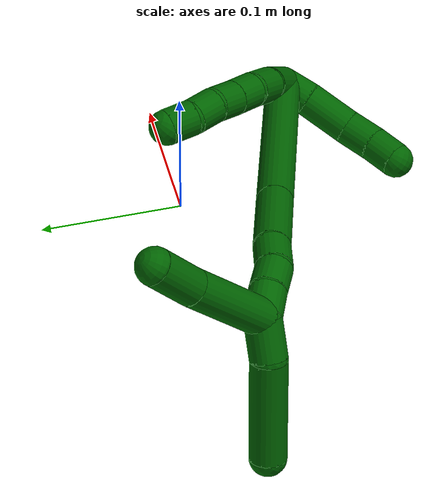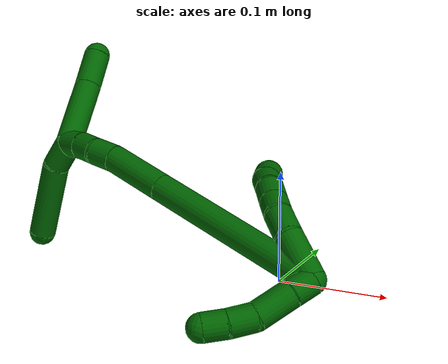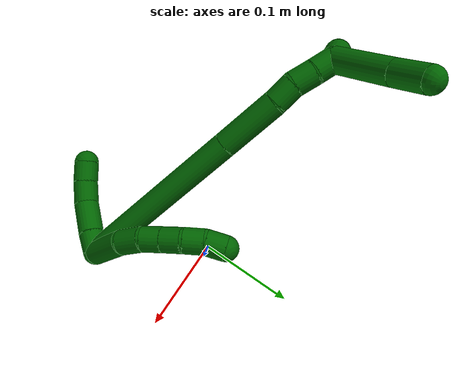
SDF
<sdf version="1.7">
 <world name="default">
  <model name="6">
   <static>0</static>
   <link name="6">
    <collision name="collision-cylinder-e_1_2_8">
     <pose>-0.014879 -0.001527 0.015789 0.096419 -0.75343 -0.038169</pose>
     <geometry><cylinder><radius>0.0125</radius><length>0.043497</length></cylinder></geometry>
     <surface>
      <friction><ode><mu>1.16</mu><mu2>1.16</mu2><slip1>0</slip1><slip2>0</slip2></ode></friction>
      <contact><ode><kp>1e+06</kp><kd>1</kd><max_vel>0</max_vel><min_depth>0.001</min_depth></ode></contact>
     </surface>
    </collision>
    <visual name="visual-cylinder-e_1_2_8">
     <pose>-0.014879 -0.001527 0.015789 0.096419 -0.75343 -0.038169</pose>
     <geometry><cylinder><radius>0.0125</radius><length>0.043497</length></cylinder></geometry>
     <material><ambient>0 0.392157 0.003922 1</ambient></material>
    </visual>
    <collision name="collision-cylinder-e_2_8_9">
     <pose>-0.037936 -0.000794 0.041219 -0.230214 -0.69029 0.08309</pose>
     <geometry><cylinder><radius>0.0125</radius><length>0.025686</length></cylinder></geometry>
     <surface>
      <friction><ode><mu>1.16</mu><mu2>1.16</mu2><slip1>0</slip1><slip2>0</slip2></ode></friction>
      <contact><ode><kp>1e+06</kp><kd>1</kd><max_vel>0</max_vel><min_depth>0.001</min_depth></ode></contact>
     </surface>
    </collision>
    <visual name="visual-cylinder-e_2_8_9">
     <pose>-0.037936 -0.000794 0.041219 -0.230214 -0.69029 0.08309</pose>
     <geometry><cylinder><radius>0.0125</radius><length>0.025686</length></cylinder></geometry>
     <material><ambient>0 0.392157 0.003922 1</ambient></material>
    </visual>
    <collision name="collision-cylinder-e_3_9_10">
     <pose>-0.051374 0.005878 0.058267 -0.537364 -0.547801 0.154412</pose>
     <geometry><cylinder><radius>0.0125</radius><length>0.020199</length></cylinder></geometry>
     <surface>
      <friction><ode><mu>1.16</mu><mu2>1.16</mu2><slip1>0</slip1><slip2>0</slip2></ode></friction>
      <contact><ode><kp>1e+06</kp><kd>1</kd><max_vel>0</max_vel><min_depth>0.001</min_depth></ode></contact>
     </surface>
    </collision>
    <visual name="visual-cylinder-e_3_9_10">
     <pose>-0.051374 0.005878 0.058267 -0.537364 -0.547801 0.154412</pose>
     <geometry><cylinder><radius>0.0125</radius><length>0.020199</length></cylinder></geometry>
     <material><ambient>0 0.392157 0.003922 1</ambient></material>
    </visual>
    <collision name="collision-cylinder-e_4_10_11">
     <pose>-0.06194 0.014342 0.073484 -0.478389 -0.542652 0.135471</pose>
     <geometry><cylinder><radius>0.0125</radius><length>0.020549</length></cylinder></geometry>
     <surface>
      <friction><ode><mu>1.16</mu><mu2>1.16</mu2><slip1>0</slip1><slip2>0</slip2></ode></friction>
      <contact><ode><kp>1e+06</kp><kd>1</kd><max_vel>0</max_vel><min_depth>0.001</min_depth></ode></contact>
     </surface>
    </collision>
    <visual name="visual-cylinder-e_4_10_11">
     <pose>-0.06194 0.014342 0.073484 -0.478389 -0.542652 0.135471</pose>
     <geometry><cylinder><radius>0.0125</radius><length>0.020549</length></cylinder></geometry>
     <material><ambient>0 0.392157 0.003922 1</ambient></material>
    </visual>
    <collision name="collision-cylinder-e_5_11_12">
     <pose>-0.071968 0.024363 0.08782 -0.741045 -0.490391 0.193802</pose>
     <geometry><cylinder><radius>0.0125</radius><length>0.020052</length></cylinder></geometry>
     <surface>
      <friction><ode><mu>1.16</mu><mu2>1.16</mu2><slip1>0</slip1><slip2>0</slip2></ode></friction>
      <contact><ode><kp>1e+06</kp><kd>1</kd><max_vel>0</max_vel><min_depth>0.001</min_depth></ode></contact>
     </surface>
    </collision>
    <visual name="visual-cylinder-e_5_11_12">
     <pose>-0.071968 0.024363 0.08782 -0.741045 -0.490391 0.193802</pose>
     <geometry><cylinder><radius>0.0125</radius><length>0.020052</length></cylinder></geometry>
     <material><ambient>0 0.392157 0.003922 1</ambient></material>
    </visual>
    <collision name="collision-cylinder-e_6_12_6">
     <pose>-0.079135 0.037313 0.101089 -0.802547 -0.246797 0.105152</pose>
     <geometry><cylinder><radius>0.0125</radius><length>0.020017</length></cylinder></geometry>
     <surface>
      <friction><ode><mu>1.16</mu><mu2>1.16</mu2><slip1>0</slip1><slip2>0</slip2></ode></friction>
      <contact><ode><kp>1e+06</kp><kd>1</kd><max_vel>0</max_vel><min_depth>0.001</min_depth></ode></contact>
     </surface>
    </collision>
    <visual name="visual-cylinder-e_6_12_6">
     <pose>-0.079135 0.037313 0.101089 -0.802547 -0.246797 0.105152</pose>
     <geometry><cylinder><radius>0.0125</radius><length>0.020017</length></cylinder></geometry>
     <material><ambient>0 0.392157 0.003922 1</ambient></material>
    </visual>
    <collision name="collision-cylinder-e_1_2_13">
     <pose>-0.005596 -0.002067 -0.008596 2.90557 -0.564299 -2.36511</pose>
     <geometry><cylinder><radius>0.0125</radius><length>0.020925</length></cylinder></geometry>
     <surface>
      <friction><ode><mu>1.16</mu><mu2>1.16</mu2><slip1>0</slip1><slip2>0</slip2></ode></friction>
      <contact><ode><kp>1e+06</kp><kd>1</kd><max_vel>0</max_vel><min_depth>0.001</min_depth></ode></contact>
     </surface>
    </collision>
    <visual name="visual-cylinder-e_1_2_13">
     <pose>-0.005596 -0.002067 -0.008596 2.90557 -0.564299 -2.36511</pose>
     <geometry><cylinder><radius>0.0125</radius><length>0.020925</length></cylinder></geometry>
     <material><ambient>0 0.392157 0.003922 1</ambient></material>
    </visual>
    <collision name="collision-cylinder-e_2_13_14">
     <pose>-0.020925 -0.006288 -0.031383 2.991 -0.595879 -2.6598</pose>
     <geometry><cylinder><radius>0.0125</radius><length>0.034686</length></cylinder></geometry>
     <surface>
      <friction><ode><mu>1.16</mu><mu2>1.16</mu2><slip1>0</slip1><slip2>0</slip2></ode></friction>
      <contact><ode><kp>1e+06</kp><kd>1</kd><max_vel>0</max_vel><min_depth>0.001</min_depth></ode></contact>
     </surface>
    </collision>
    <visual name="visual-cylinder-e_2_13_14">
     <pose>-0.020925 -0.006288 -0.031383 2.991 -0.595879 -2.6598</pose>
     <geometry><cylinder><radius>0.0125</radius><length>0.034686</length></cylinder></geometry>
     <material><ambient>0 0.392157 0.003922 1</ambient></material>
    </visual>
    <collision name="collision-cylinder-e_3_14_15">
     <pose>-0.039701 -0.011228 -0.052442 2.75622 -0.884183 -2.35964</pose>
     <geometry><cylinder><radius>0.0125</radius><length>0.023384</length></cylinder></geometry>
     <surface>
      <friction><ode><mu>1.16</mu><mu2>1.16</mu2><slip1>0</slip1><slip2>0</slip2></ode></friction>
      <contact><ode><kp>1e+06</kp><kd>1</kd><max_vel>0</max_vel><min_depth>0.001</min_depth></ode></contact>
     </surface>
    </collision>
    <visual name="visual-cylinder-e_3_14_15">
     <pose>-0.039701 -0.011228 -0.052442 2.75622 -0.884183 -2.35964</pose>
     <geometry><cylinder><radius>0.0125</radius><length>0.023384</length></cylinder></geometry>
     <material><ambient>0 0.392157 0.003922 1</ambient></material>
    </visual>
    <collision name="collision-cylinder-e_4_15_5">
     <pose>-0.057607 -0.016174 -0.064514 2.74804 -1.00457 -2.44527</pose>
     <geometry><cylinder><radius>0.0125</radius><length>0.021005</length></cylinder></geometry>
     <surface>
      <friction><ode><mu>1.16</mu><mu2>1.16</mu2><slip1>0</slip1><slip2>0</slip2></ode></friction>
      <contact><ode><kp>1e+06</kp><kd>1</kd><max_vel>0</max_vel><min_depth>0.001</min_depth></ode></contact>
     </surface>
    </collision>
    <visual name="visual-cylinder-e_4_15_5">
     <pose>-0.057607 -0.016174 -0.064514 2.74804 -1.00457 -2.44527</pose>
     <geometry><cylinder><radius>0.0125</radius><length>0.021005</length></cylinder></geometry>
     <material><ambient>0 0.392157 0.003922 1</ambient></material>
    </visual>
    <collision name="collision-cylinder-e_1_2_16">
     <pose>-0.080701 0.010446 0.029851 -0.336618 -1.1973 0.230788</pose>
     <geometry><cylinder><radius>0.0125</radius><length>0.173354</length></cylinder></geometry>
     <surface>
      <friction><ode><mu>1.16</mu><mu2>1.16</mu2><slip1>0</slip1><slip2>0</slip2></ode></friction>
      <contact><ode><kp>1e+06</kp><kd>1</kd><max_vel>0</max_vel><min_depth>0.001</min_depth></ode></contact>
     </surface>
    </collision>
    <visual name="visual-cylinder-e_1_2_16">
     <pose>-0.080701 0.010446 0.029851 -0.336618 -1.1973 0.230788</pose>
     <geometry><cylinder><radius>0.0125</radius><length>0.173354</length></cylinder></geometry>
     <material><ambient>0 0.392157 0.003922 1</ambient></material>
    </visual>
    <collision name="collision-cylinder-e_2_16_17">
     <pose>-0.189583 0.024336 0.070161 -0.31814 -1.19832 0.218239</pose>
     <geometry><cylinder><radius>0.0125</radius><length>0.06051</length></cylinder></geometry>
     <surface>
      <friction><ode><mu>1.16</mu><mu2>1.16</mu2><slip1>0</slip1><slip2>0</slip2></ode></friction>
      <contact><ode><kp>1e+06</kp><kd>1</kd><max_vel>0</max_vel><min_depth>0.001</min_depth></ode></contact>
     </surface>
    </collision>
    <visual name="visual-cylinder-e_2_16_17">
     <pose>-0.189583 0.024336 0.070161 -0.31814 -1.19832 0.218239</pose>
     <geometry><cylinder><radius>0.0125</radius><length>0.06051</length></cylinder></geometry>
     <material><ambient>0 0.392157 0.003922 1</ambient></material>
    </visual>
    <collision name="collision-cylinder-e_3_17_18">
     <pose>-0.228882 0.029419 0.082953 -0.612153 -1.31972 0.48088</pose>
     <geometry><cylinder><radius>0.0125</radius><length>0.022957</length></cylinder></geometry>
     <surface>
      <friction><ode><mu>1.16</mu><mu2>1.16</mu2><slip1>0</slip1><slip2>0</slip2></ode></friction>
      <contact><ode><kp>1e+06</kp><kd>1</kd><max_vel>0</max_vel><min_depth>0.001</min_depth></ode></contact>
     </surface>
    </collision>
    <visual name="visual-cylinder-e_3_17_18">
     <pose>-0.228882 0.029419 0.082953 -0.612153 -1.31972 0.48088</pose>
     <geometry><cylinder><radius>0.0125</radius><length>0.022957</length></cylinder></geometry>
     <material><ambient>0 0.392157 0.003922 1</ambient></material>
    </visual>
    <collision name="collision-cylinder-e_4_18_19">
     <pose>-0.249555 0.035021 0.088592 -0.875705 -1.07555 0.54456</pose>
     <geometry><cylinder><radius>0.0125</radius><length>0.021717</length></cylinder></geometry>
     <surface>
      <friction><ode><mu>1.16</mu><mu2>1.16</mu2><slip1>0</slip1><slip2>0</slip2></ode></friction>
      <contact><ode><kp>1e+06</kp><kd>1</kd><max_vel>0</max_vel><min_depth>0.001</min_depth></ode></contact>
     </surface>
    </collision>
    <visual name="visual-cylinder-e_4_18_19">
     <pose>-0.249555 0.035021 0.088592 -0.875705 -1.07555 0.54456</pose>
     <geometry><cylinder><radius>0.0125</radius><length>0.021717</length></cylinder></geometry>
     <material><ambient>0 0.392157 0.003922 1</ambient></material>
    </visual>
    <collision name="collision-cylinder-e_5_19_1">
     <pose>-0.268569 0.043639 0.093894 -1.16561 -1.0793 0.752069</pose>
     <geometry><cylinder><radius>0.0125</radius><length>0.021461</length></cylinder></geometry>
     <surface>
      <friction><ode><mu>1.16</mu><mu2>1.16</mu2><slip1>0</slip1><slip2>0</slip2></ode></friction>
      <contact><ode><kp>1e+06</kp><kd>1</kd><max_vel>0</max_vel><min_depth>0.001</min_depth></ode></contact>
     </surface>
    </collision>
    <visual name="visual-cylinder-e_5_19_1">
     <pose>-0.268569 0.043639 0.093894 -1.16561 -1.0793 0.752069</pose>
     <geometry><cylinder><radius>0.0125</radius><length>0.021461</length></cylinder></geometry>
     <material><ambient>0 0.392157 0.003922 1</ambient></material>
    </visual>
    <collision name="collision-cylinder-e_1_1_20">
     <pose>-0.283987 0.057125 0.087275 -2.34376 -0.44984 0.99457</pose>
     <geometry><cylinder><radius>0.0125</radius><length>0.027401</length></cylinder></geometry>
     <surface>
      <friction><ode><mu>1.16</mu><mu2>1.16</mu2><slip1>0</slip1><slip2>0</slip2></ode></friction>
      <contact><ode><kp>1e+06</kp><kd>1</kd><max_vel>0</max_vel><min_depth>0.001</min_depth></ode></contact>
     </surface>
    </collision>
    <visual name="visual-cylinder-e_1_1_20">
     <pose>-0.283987 0.057125 0.087275 -2.34376 -0.44984 0.99457</pose>
     <geometry><cylinder><radius>0.0125</radius><length>0.027401</length></cylinder></geometry>
     <material><ambient>0 0.392157 0.003922 1</ambient></material>
    </visual>
    <collision name="collision-cylinder-e_2_20_4">
     <pose>-0.296035 0.093302 0.055579 -2.27183 -0.1686 0.359863</pose>
     <geometry><cylinder><radius>0.0125</radius><length>0.072599</length></cylinder></geometry>
     <surface>
      <friction><ode><mu>1.16</mu><mu2>1.16</mu2><slip1>0</slip1><slip2>0</slip2></ode></friction>
      <contact><ode><kp>1e+06</kp><kd>1</kd><max_vel>0</max_vel><min_depth>0.001</min_depth></ode></contact>
     </surface>
    </collision>
    <visual name="visual-cylinder-e_2_20_4">
     <pose>-0.296035 0.093302 0.055579 -2.27183 -0.1686 0.359863</pose>
     <geometry><cylinder><radius>0.0125</radius><length>0.072599</length></cylinder></geometry>
     <material><ambient>0 0.392157 0.003922 1</ambient></material>
    </visual>
    <collision name="collision-cylinder-e_1_1_21">
     <pose>-0.282281 0.049039 0.128073 -0.023172 -0.131313 0.001524</pose>
     <geometry><cylinder><radius>0.0125</radius><length>0.064943</length></cylinder></geometry>
     <surface>
      <friction><ode><mu>1.16</mu><mu2>1.16</mu2><slip1>0</slip1><slip2>0</slip2></ode></friction>
      <contact><ode><kp>1e+06</kp><kd>1</kd><max_vel>0</max_vel><min_depth>0.001</min_depth></ode></contact>
     </surface>
    </collision>
    <visual name="visual-cylinder-e_1_1_21">
     <pose>-0.282281 0.049039 0.128073 -0.023172 -0.131313 0.001524</pose>
     <geometry><cylinder><radius>0.0125</radius><length>0.064943</length></cylinder></geometry>
     <material><ambient>0 0.392157 0.003922 1</ambient></material>
    </visual>
    <collision name="collision-cylinder-e_2_21_3">
     <pose>-0.288692 0.048908 0.177629 0.05042 -0.123504 -0.003118</pose>
     <geometry><cylinder><radius>0.0125</radius><length>0.035057</length></cylinder></geometry>
     <surface>
      <friction><ode><mu>1.16</mu><mu2>1.16</mu2><slip1>0</slip1><slip2>0</slip2></ode></friction>
      <contact><ode><kp>1e+06</kp><kd>1</kd><max_vel>0</max_vel><min_depth>0.001</min_depth></ode></contact>
     </surface>
    </collision>
    <visual name="visual-cylinder-e_2_21_3">
     <pose>-0.288692 0.048908 0.177629 0.05042 -0.123504 -0.003118</pose>
     <geometry><cylinder><radius>0.0125</radius><length>0.035057</length></cylinder></geometry>
     <material><ambient>0 0.392157 0.003922 1</ambient></material>
    </visual>
    <collision name="collision-sphere-3">
     <pose>-0.290851 0.048031 0.195002 0 -0 0</pose>
     <geometry><sphere><radius>0.0125</radius></sphere></geometry>
     <surface>
      <friction><ode><mu>1.16</mu><mu2>1.16</mu2><slip1>0</slip1><slip2>0</slip2></ode></friction>
      <contact><ode><kp>1e+06</kp><kd>1</kd><max_vel>0</max_vel><min_depth>0.001</min_depth></ode></contact>
     </surface>
    </collision>
    <visual name="visual-sphere-3">
     <pose>-0.290851 0.048031 0.195002 0 -0 0</pose>
     <geometry><sphere><radius>0.0125</radius></sphere></geometry>
     <material><ambient>0 0.392157 0.003922 1</ambient></material>
    </visual>
    <collision name="collision-sphere-21">
     <pose>-0.286533 0.049785 0.160257 0 -0 0</pose>
     <geometry><sphere><radius>0.0125</radius></sphere></geometry>
     <surface>
      <friction><ode><mu>1.16</mu><mu2>1.16</mu2><slip1>0</slip1><slip2>0</slip2></ode></friction>
      <contact><ode><kp>1e+06</kp><kd>1</kd><max_vel>0</max_vel><min_depth>0.001</min_depth></ode></contact>
     </surface>
    </collision>
    <visual name="visual-sphere-21">
     <pose>-0.286533 0.049785 0.160257 0 -0 0</pose>
     <geometry><sphere><radius>0.0125</radius></sphere></geometry>
     <material><ambient>0 0.392157 0.003922 1</ambient></material>
    </visual>
    <collision name="collision-sphere-4">
     <pose>-0.302126 0.120648 0.032497 0 -0 0</pose>
     <geometry><sphere><radius>0.0125</radius></sphere></geometry>
     <surface>
      <friction><ode><mu>1.16</mu><mu2>1.16</mu2><slip1>0</slip1><slip2>0</slip2></ode></friction>
      <contact><ode><kp>1e+06</kp><kd>1</kd><max_vel>0</max_vel><min_depth>0.001</min_depth></ode></contact>
     </surface>
    </collision>
    <visual name="visual-sphere-4">
     <pose>-0.302126 0.120648 0.032497 0 -0 0</pose>
     <geometry><sphere><radius>0.0125</radius></sphere></geometry>
     <material><ambient>0 0.392157 0.003922 1</ambient></material>
    </visual>
    <collision name="collision-sphere-20">
     <pose>-0.289944 0.065957 0.07866 0 -0 0</pose>
     <geometry><sphere><radius>0.0125</radius></sphere></geometry>
     <surface>
      <friction><ode><mu>1.16</mu><mu2>1.16</mu2><slip1>0</slip1><slip2>0</slip2></ode></friction>
      <contact><ode><kp>1e+06</kp><kd>1</kd><max_vel>0</max_vel><min_depth>0.001</min_depth></ode></contact>
     </surface>
    </collision>
    <visual name="visual-sphere-20">
     <pose>-0.289944 0.065957 0.07866 0 -0 0</pose>
     <geometry><sphere><radius>0.0125</radius></sphere></geometry>
     <material><ambient>0 0.392157 0.003922 1</ambient></material>
    </visual>
    <collision name="collision-sphere-12">
     <pose>-0.07669 0.030334 0.094345 0 -0 0</pose>
     <geometry><sphere><radius>0.0125</radius></sphere></geometry>
     <surface>
      <friction><ode><mu>1.16</mu><mu2>1.16</mu2><slip1>0</slip1><slip2>0</slip2></ode></friction>
      <contact><ode><kp>1e+06</kp><kd>1</kd><max_vel>0</max_vel><min_depth>0.001</min_depth></ode></contact>
     </surface>
    </collision>
    <visual name="visual-sphere-12">
     <pose>-0.07669 0.030334 0.094345 0 -0 0</pose>
     <geometry><sphere><radius>0.0125</radius></sphere></geometry>
     <material><ambient>0 0.392157 0.003922 1</ambient></material>
    </visual>
    <collision name="collision-sphere-11">
     <pose>-0.067246 0.018392 0.081294 0 -0 0</pose>
     <geometry><sphere><radius>0.0125</radius></sphere></geometry>
     <surface>
      <friction><ode><mu>1.16</mu><mu2>1.16</mu2><slip1>0</slip1><slip2>0</slip2></ode></friction>
      <contact><ode><kp>1e+06</kp><kd>1</kd><max_vel>0</max_vel><min_depth>0.001</min_depth></ode></contact>
     </surface>
    </collision>
    <visual name="visual-sphere-11">
     <pose>-0.067246 0.018392 0.081294 0 -0 0</pose>
     <geometry><sphere><radius>0.0125</radius></sphere></geometry>
     <material><ambient>0 0.392157 0.003922 1</ambient></material>
    </visual>
    <collision name="collision-sphere-10">
     <pose>-0.056634 0.010292 0.065673 0 -0 0</pose>
     <geometry><sphere><radius>0.0125</radius></sphere></geometry>
     <surface>
      <friction><ode><mu>1.16</mu><mu2>1.16</mu2><slip1>0</slip1><slip2>0</slip2></ode></friction>
      <contact><ode><kp>1e+06</kp><kd>1</kd><max_vel>0</max_vel><min_depth>0.001</min_depth></ode></contact>
     </surface>
    </collision>
    <visual name="visual-sphere-10">
     <pose>-0.056634 0.010292 0.065673 0 -0 0</pose>
     <geometry><sphere><radius>0.0125</radius></sphere></geometry>
     <material><ambient>0 0.392157 0.003922 1</ambient></material>
    </visual>
    <collision name="collision-sphere-9">
     <pose>-0.046114 0.001465 0.05086 0 -0 0</pose>
     <geometry><sphere><radius>0.0125</radius></sphere></geometry>
     <surface>
      <friction><ode><mu>1.16</mu><mu2>1.16</mu2><slip1>0</slip1><slip2>0</slip2></ode></friction>
      <contact><ode><kp>1e+06</kp><kd>1</kd><max_vel>0</max_vel><min_depth>0.001</min_depth></ode></contact>
     </surface>
    </collision>
    <visual name="visual-sphere-9">
     <pose>-0.046114 0.001465 0.05086 0 -0 0</pose>
     <geometry><sphere><radius>0.0125</radius></sphere></geometry>
     <material><ambient>0 0.392157 0.003922 1</ambient></material>
    </visual>
    <collision name="collision-sphere-2">
     <geometry><sphere><radius>0.0125</radius></sphere></geometry>
     <surface>
      <friction><ode><mu>1.16</mu><mu2>1.16</mu2><slip1>0</slip1><slip2>0</slip2></ode></friction>
      <contact><ode><kp>1e+06</kp><kd>1</kd><max_vel>0</max_vel><min_depth>0.001</min_depth></ode></contact>
     </surface>
    </collision>
    <visual name="visual-sphere-2">
     <geometry><sphere><radius>0.0125</radius></sphere></geometry>
     <material><ambient>0 0.392157 0.003922 1</ambient></material>
    </visual>
    <collision name="collision-sphere-19">
     <pose>-0.259109 0.038985 0.091897 0 -0 0</pose>
     <geometry><sphere><radius>0.0125</radius></sphere></geometry>
     <surface>
      <friction><ode><mu>1.16</mu><mu2>1.16</mu2><slip1>0</slip1><slip2>0</slip2></ode></friction>
      <contact><ode><kp>1e+06</kp><kd>1</kd><max_vel>0</max_vel><min_depth>0.001</min_depth></ode></contact>
     </surface>
    </collision>
    <visual name="visual-sphere-19">
     <pose>-0.259109 0.038985 0.091897 0 -0 0</pose>
     <geometry><sphere><radius>0.0125</radius></sphere></geometry>
     <material><ambient>0 0.392157 0.003922 1</ambient></material>
    </visual>
    <collision name="collision-sphere-8">
     <pose>-0.029758 -0.003054 0.031577 0 -0 0</pose>
     <geometry><sphere><radius>0.0125</radius></sphere></geometry>
     <surface>
      <friction><ode><mu>1.16</mu><mu2>1.16</mu2><slip1>0</slip1><slip2>0</slip2></ode></friction>
      <contact><ode><kp>1e+06</kp><kd>1</kd><max_vel>0</max_vel><min_depth>0.001</min_depth></ode></contact>
     </surface>
    </collision>
    <visual name="visual-sphere-8">
     <pose>-0.029758 -0.003054 0.031577 0 -0 0</pose>
     <geometry><sphere><radius>0.0125</radius></sphere></geometry>
     <material><ambient>0 0.392157 0.003922 1</ambient></material>
    </visual>
    <collision name="collision-sphere-6">
     <pose>-0.08158 0.044292 0.107833 0 -0 0</pose>
     <geometry><sphere><radius>0.0125</radius></sphere></geometry>
     <surface>
      <friction><ode><mu>1.16</mu><mu2>1.16</mu2><slip1>0</slip1><slip2>0</slip2></ode></friction>
      <contact><ode><kp>1e+06</kp><kd>1</kd><max_vel>0</max_vel><min_depth>0.001</min_depth></ode></contact>
     </surface>
    </collision>
    <visual name="visual-sphere-6">
     <pose>-0.08158 0.044292 0.107833 0 -0 0</pose>
     <geometry><sphere><radius>0.0125</radius></sphere></geometry>
     <material><ambient>0 0.392157 0.003922 1</ambient></material>
    </visual>
    <collision name="collision-sphere-13">
     <pose>-0.011191 -0.004135 -0.017191 0 -0 0</pose>
     <geometry><sphere><radius>0.0125</radius></sphere></geometry>
     <surface>
      <friction><ode><mu>1.16</mu><mu2>1.16</mu2><slip1>0</slip1><slip2>0</slip2></ode></friction>
      <contact><ode><kp>1e+06</kp><kd>1</kd><max_vel>0</max_vel><min_depth>0.001</min_depth></ode></contact>
     </surface>
    </collision>
    <visual name="visual-sphere-13">
     <pose>-0.011191 -0.004135 -0.017191 0 -0 0</pose>
     <geometry><sphere><radius>0.0125</radius></sphere></geometry>
     <material><ambient>0 0.392157 0.003922 1</ambient></material>
    </visual>
    <collision name="collision-sphere-14">
     <pose>-0.030658 -0.008441 -0.045574 0 -0 0</pose>
     <geometry><sphere><radius>0.0125</radius></sphere></geometry>
     <surface>
      <friction><ode><mu>1.16</mu><mu2>1.16</mu2><slip1>0</slip1><slip2>0</slip2></ode></friction>
      <contact><ode><kp>1e+06</kp><kd>1</kd><max_vel>0</max_vel><min_depth>0.001</min_depth></ode></contact>
     </surface>
    </collision>
    <visual name="visual-sphere-14">
     <pose>-0.030658 -0.008441 -0.045574 0 -0 0</pose>
     <geometry><sphere><radius>0.0125</radius></sphere></geometry>
     <material><ambient>0 0.392157 0.003922 1</ambient></material>
    </visual>
    <collision name="collision-sphere-15">
     <pose>-0.048743 -0.014014 -0.05931 0 -0 0</pose>
     <geometry><sphere><radius>0.0125</radius></sphere></geometry>
     <surface>
      <friction><ode><mu>1.16</mu><mu2>1.16</mu2><slip1>0</slip1><slip2>0</slip2></ode></friction>
      <contact><ode><kp>1e+06</kp><kd>1</kd><max_vel>0</max_vel><min_depth>0.001</min_depth></ode></contact>
     </surface>
    </collision>
    <visual name="visual-sphere-15">
     <pose>-0.048743 -0.014014 -0.05931 0 -0 0</pose>
     <geometry><sphere><radius>0.0125</radius></sphere></geometry>
     <material><ambient>0 0.392157 0.003922 1</ambient></material>
    </visual>
    <collision name="collision-sphere-5">
     <pose>-0.06647 -0.018335 -0.069717 0 -0 0</pose>
     <geometry><sphere><radius>0.0125</radius></sphere></geometry>
     <surface>
      <friction><ode><mu>1.16</mu><mu2>1.16</mu2><slip1>0</slip1><slip2>0</slip2></ode></friction>
      <contact><ode><kp>1e+06</kp><kd>1</kd><max_vel>0</max_vel><min_depth>0.001</min_depth></ode></contact>
     </surface>
    </collision>
    <visual name="visual-sphere-5">
     <pose>-0.06647 -0.018335 -0.069717 0 -0 0</pose>
     <geometry><sphere><radius>0.0125</radius></sphere></geometry>
     <material><ambient>0 0.392157 0.003922 1</ambient></material>
    </visual>
    <collision name="collision-sphere-16">
     <pose>-0.161403 0.020892 0.059703 0 -0 0</pose>
     <geometry><sphere><radius>0.0125</radius></sphere></geometry>
     <surface>
      <friction><ode><mu>1.16</mu><mu2>1.16</mu2><slip1>0</slip1><slip2>0</slip2></ode></friction>
      <contact><ode><kp>1e+06</kp><kd>1</kd><max_vel>0</max_vel><min_depth>0.001</min_depth></ode></contact>
     </surface>
    </collision>
    <visual name="visual-sphere-16">
     <pose>-0.161403 0.020892 0.059703 0 -0 0</pose>
     <geometry><sphere><radius>0.0125</radius></sphere></geometry>
     <material><ambient>0 0.392157 0.003922 1</ambient></material>
    </visual>
    <collision name="collision-sphere-17">
     <pose>-0.217763 0.02778 0.080619 0 -0 0</pose>
     <geometry><sphere><radius>0.0125</radius></sphere></geometry>
     <surface>
      <friction><ode><mu>1.16</mu><mu2>1.16</mu2><slip1>0</slip1><slip2>0</slip2></ode></friction>
      <contact><ode><kp>1e+06</kp><kd>1</kd><max_vel>0</max_vel><min_depth>0.001</min_depth></ode></contact>
     </surface>
    </collision>
    <visual name="visual-sphere-17">
     <pose>-0.217763 0.02778 0.080619 0 -0 0</pose>
     <geometry><sphere><radius>0.0125</radius></sphere></geometry>
     <material><ambient>0 0.392157 0.003922 1</ambient></material>
    </visual>
    <collision name="collision-sphere-18">
     <pose>-0.240001 0.031058 0.085287 0 -0 0</pose>
     <geometry><sphere><radius>0.0125</radius></sphere></geometry>
     <surface>
      <friction><ode><mu>1.16</mu><mu2>1.16</mu2><slip1>0</slip1><slip2>0</slip2></ode></friction>
      <contact><ode><kp>1e+06</kp><kd>1</kd><max_vel>0</max_vel><min_depth>0.001</min_depth></ode></contact>
     </surface>
    </collision>
    <visual name="visual-sphere-18">
     <pose>-0.240001 0.031058 0.085287 0 -0 0</pose>
     <geometry><sphere><radius>0.0125</radius></sphere></geometry>
     <material><ambient>0 0.392157 0.003922 1</ambient></material>
    </visual>
    <collision name="collision-sphere-1">
     <pose>-0.278029 0.048293 0.09589 0 -0 0</pose>
     <geometry><sphere><radius>0.0125</radius></sphere></geometry>
     <surface>
      <friction><ode><mu>1.16</mu><mu2>1.16</mu2><slip1>0</slip1><slip2>0</slip2></ode></friction>
      <contact><ode><kp>1e+06</kp><kd>1</kd><max_vel>0</max_vel><min_depth>0.001</min_depth></ode></contact>
     </surface>
    </collision>
    <visual name="visual-sphere-1">
     <pose>-0.278029 0.048293 0.09589 0 -0 0</pose>
     <geometry><sphere><radius>0.0125</radius></sphere></geometry>
     <material><ambient>0 0.392157 0.003922 1</ambient></material>
    </visual>
    <inertial>
     <pose>-0.146088 0.026123 0.054136 0 -0 0</pose>
     <mass>0.75</mass>
     <inertia>
      <ixx>0.00025</ixx>
      <ixy>0</ixy>
      <ixz>0</ixz>
      <iyy>0.000558</iyy>
      <iyz>0</iyz>
      <izz>0.000389</izz>
     </inertia>
    </inertial>
   </link>
   <pose>0.064865 -0.090682 0.039955 -0.785653 0.114433 0.052753</pose>
  </model>
 </world>
</sdf>
